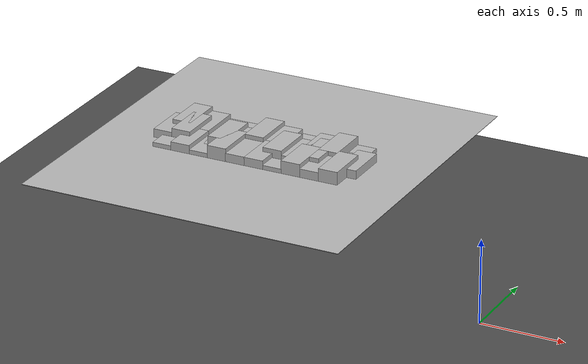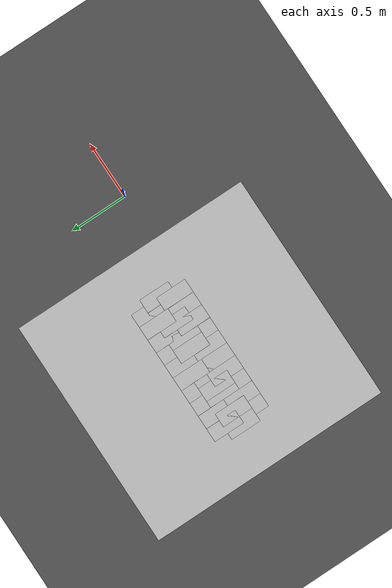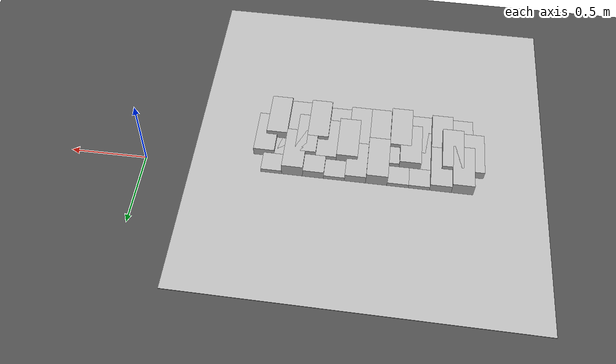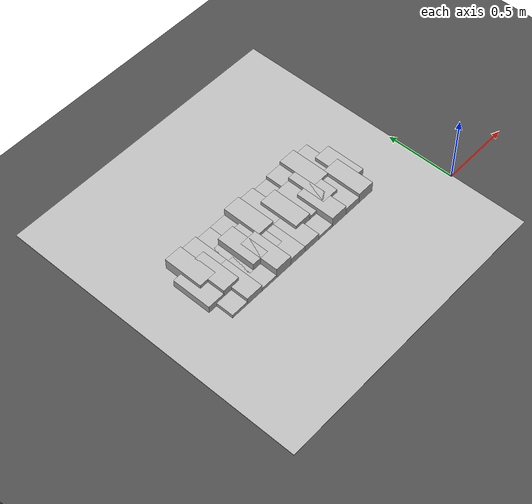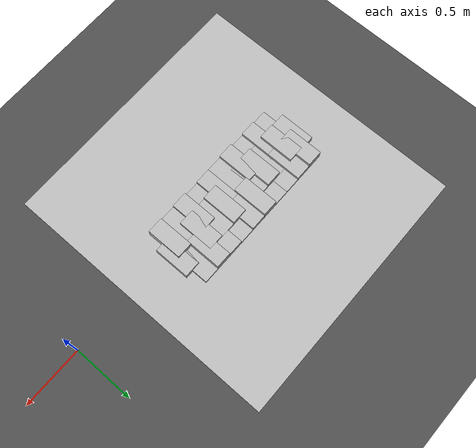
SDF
<sdf version="1.6">
 <world name="default">
  <model name="ground_plane">
   <static>1</static>
   <link name="link">
    <collision name="collision">
     <geometry><plane><normal>0 0 1</normal><size>100 100</size></plane></geometry>
     <surface><friction><ode><mu>100</mu><mu2>50</mu2></ode></friction></surface>
    </collision>
    <visual name="visual">
     <cast_shadows>0</cast_shadows>
     <geometry><plane><normal>0 0 1</normal><size>100 100</size></plane></geometry>
     <material>
      <script><uri>file://media/materials/scripts/gazebo.material</uri><name>Gazebo/Grey</name></script>
     </material>
    </visual>
   </link>
  </model>
  <model name="frc2016_roughterrain_0">
   <link name="link_clone_6">
    <pose>-1.32641 0.202085 -0.073164 0 -0 0</pose>
    <inertial>
     <inertia><ixx>nan</ixx><ixy>0</ixy><ixz>0</ixz><iyy>nan</iyy><iyz>0</iyz><izz>nan</izz></inertia>
     <mass>0</mass>
    </inertial>
    <visual name="row1_block3_md">
     <pose>0.28575 0.1143 0.10968 0 -0 0</pose>
     <geometry><box><size>0.115452 0.257474 0.0508</size></box></geometry>
     <material><shader type="pixel"/></material>
    </visual>
    <visual name="row1_block2_lg">
     <pose>0.40005 0.1143 0.12238 0 -0 0</pose>
     <geometry><box><size>0.115452 0.257474 0.0762</size></box></geometry>
     <material><shader type="pixel"/></material>
    </visual>
    <visual name="row1_block4_sm">
     <pose>0.17145 0.1143 0.09698 0 -0 0</pose>
     <geometry><box><size>0.115452 0.257474 0.0254</size></box></geometry>
     <material><shader type="pixel"/></material>
    </visual>
    <visual name="platform">
     <pose>0 0 0.08269 0 -0 0</pose>
     <geometry><box><size>1.91826 2.01688 0.003175</size></box></geometry>
     <material><shader type="pixel"/></material>
    </visual>
    <visual name="row1_block1_sm">
     <pose>0.51435 0.1143 0.09698 0 -0 0</pose>
     <geometry><box><size>0.115452 0.257474 0.0254</size></box></geometry>
     <material><shader type="pixel"/></material>
    </visual>
    <visual name="row1_block5_md">
     <pose>0.05715 0.1143 0.10968 0 -0 0</pose>
     <geometry><box><size>0.115452 0.257474 0.0508</size></box></geometry>
     <material><shader type="pixel"/></material>
    </visual>
    <visual name="row1_block6_lg">
     <pose>-0.05715 0.1143 0.12238 0 -0 0</pose>
     <geometry><box><size>0.115452 0.257474 0.0762</size></box></geometry>
     <material><shader type="pixel"/></material>
    </visual>
    <visual name="row1_block7_sm">
     <pose>-0.17145 0.1143 0.09698 0 -0 0</pose>
     <geometry><box><size>0.115452 0.257474 0.0254</size></box></geometry>
     <material><shader type="pixel"/></material>
    </visual>
    <visual name="row1_block8_sm">
     <pose>-0.28575 0.1143 0.09698 0 -0 0</pose>
     <geometry><box><size>0.115452 0.257474 0.0254</size></box></geometry>
     <material><shader type="pixel"/></material>
    </visual>
    <visual name="row1_block9_md">
     <pose>-0.40005 0.1143 0.10968 0 -0 0</pose>
     <geometry><box><size>0.115452 0.257474 0.0508</size></box></geometry>
     <material><shader type="pixel"/></material>
    </visual>
    <visual name="row1_block10_lg">
     <pose>-0.51435 0.1143 0.12238 0 -0 0</pose>
     <geometry><box><size>0.115452 0.257474 0.0762</size></box></geometry>
     <material><shader type="pixel"/></material>
    </visual>
    <visual name="row2_block1_md">
     <pose>0.5715 0 0.10968 0 -0 0</pose>
     <geometry><box><size>0.115452 0.257474 0.0508</size></box></geometry>
     <material><shader type="pixel"/></material>
    </visual>
    <visual name="row2_block2_sm">
     <pose>0.4572 0 0.09698 0 -0 0</pose>
     <geometry><box><size>0.115452 0.257474 0.0254</size></box></geometry>
     <material><shader type="pixel"/></material>
    </visual>
    <visual name="row2_block3_lg">
     <pose>0.3429 0 0.12238 0 -0 0</pose>
     <geometry><box><size>0.115452 0.257474 0.0762</size></box></geometry>
     <material><shader type="pixel"/></material>
    </visual>
    <visual name="row2_block4_md">
     <pose>0.2286 0 0.10968 0 -0 0</pose>
     <geometry><box><size>0.115452 0.257474 0.0508</size></box></geometry>
     <material><shader type="pixel"/></material>
    </visual>
    <visual name="row2_block5_lg">
     <pose>0.1143 0 0.12238 0 -0 0</pose>
     <geometry><box><size>0.115452 0.257474 0.0762</size></box></geometry>
     <material><shader type="pixel"/></material>
    </visual>
    <visual name="row2_block6_sm">
     <pose>0 0 0.09698 0 -0 0</pose>
     <geometry><box><size>0.115452 0.257474 0.0254</size></box></geometry>
     <material><shader type="pixel"/></material>
    </visual>
    <visual name="row2_block7_md">
     <pose>-0.1143 0 0.10968 0 -0 0</pose>
     <geometry><box><size>0.115452 0.257474 0.0508</size></box></geometry>
     <material><shader type="pixel"/></material>
    </visual>
    <visual name="row2_block8_lg">
     <pose>-0.2286 0 0.12238 0 -0 0</pose>
     <geometry><box><size>0.115452 0.257474 0.0762</size></box></geometry>
     <material><shader type="pixel"/></material>
    </visual>
    <visual name="row2_block9_sm">
     <pose>-0.3429 0 0.09698 0 -0 0</pose>
     <geometry><box><size>0.115452 0.257474 0.0254</size></box></geometry>
     <material><shader type="pixel"/></material>
    </visual>
    <visual name="row2_block10_lg">
     <pose>-0.4572 0 0.12238 0 -0 0</pose>
     <geometry><box><size>0.115452 0.257474 0.0762</size></box></geometry>
     <material><shader type="pixel"/></material>
    </visual>
    <visual name="row2_block11_md">
     <pose>-0.5715 0 0.10968 0 -0 0</pose>
     <geometry><box><size>0.115452 0.257474 0.0508</size></box></geometry>
     <material><shader type="pixel"/></material>
    </visual>
    <visual name="row3_block2_md">
     <pose>0.40005 -0.1143 0.10968 0 -0 0</pose>
     <geometry><box><size>0.115452 0.257474 0.0508</size></box></geometry>
     <material><shader type="pixel"/></material>
    </visual>
    <visual name="row3_block1_lg">
     <pose>0.51435 -0.1143 0.12238 0 -0 0</pose>
     <geometry><box><size>0.115452 0.257474 0.0762</size></box></geometry>
     <material><shader type="pixel"/></material>
    </visual>
    <visual name="row3_block3_lg">
     <pose>0.28575 -0.1143 0.12238 0 -0 0</pose>
     <geometry><box><size>0.115452 0.257474 0.0762</size></box></geometry>
     <material><shader type="pixel"/></material>
    </visual>
    <visual name="row3_block4_sm">
     <pose>0.17145 -0.1143 0.09698 0 -0 0</pose>
     <geometry><box><size>0.115452 0.257474 0.0254</size></box></geometry>
     <material><shader type="pixel"/></material>
    </visual>
    <visual name="row3_block5_md">
     <pose>0.05715 -0.1143 0.10968 0 -0 0</pose>
     <geometry><box><size>0.115452 0.257474 0.0508</size></box></geometry>
     <material><shader type="pixel"/></material>
    </visual>
    <visual name="row3_block6_md">
     <pose>-0.05715 -0.1143 0.10968 0 -0 0</pose>
     <geometry><box><size>0.115452 0.257474 0.0508</size></box></geometry>
     <material><shader type="pixel"/></material>
    </visual>
    <visual name="row3_block8_sm">
     <pose>-0.28575 -0.1143 0.09698 0 -0 0</pose>
     <geometry><box><size>0.115452 0.257474 0.0254</size></box></geometry>
     <material><shader type="pixel"/></material>
    </visual>
    <visual name="row3_block7_lg">
     <pose>-0.17145 -0.1143 0.12238 0 -0 0</pose>
     <geometry><box><size>0.115452 0.257474 0.0762</size></box></geometry>
     <material><shader type="pixel"/></material>
    </visual>
    <visual name="row3_block9_md">
     <pose>-0.40005 -0.1143 0.10968 0 -0 0</pose>
     <geometry><box><size>0.115452 0.257474 0.0508</size></box></geometry>
     <material><shader type="pixel"/></material>
    </visual>
    <visual name="row3_block10_sm">
     <pose>-0.51435 -0.1143 0.09698 0 -0 0</pose>
     <geometry><box><size>0.115452 0.257474 0.0254</size></box></geometry>
     <material><shader type="pixel"/></material>
    </visual>
    <collision name="row2_block5_lg_0">
     <pose>0.1143 0 0.12238 0 -0 0</pose>
     <geometry><box><size>0.115452 0.257474 0.0762</size></box></geometry>
     <surface>
      <friction>
       <ode><mu>1</mu><mu2>1</mu2><fdir1>0 0 0</fdir1><slip1>0</slip1><slip2>0</slip2></ode>
       <torsional>
        <coefficient>1</coefficient>
        <patch_radius>0</patch_radius>
        <surface_radius>0</surface_radius>
        <use_patch_radius>1</use_patch_radius>
        <ode><slip>0</slip></ode>
       </torsional>
      </friction>
      <bounce><restitution_coefficient>0</restitution_coefficient><threshold>1e+06</threshold></bounce>
      <contact>
       <collide_without_contact>0</collide_without_contact>
       <collide_without_contact_bitmask>1</collide_without_contact_bitmask>
       <collide_bitmask>1</collide_bitmask>
       <ode>
        <soft_cfm>0</soft_cfm>
        <soft_erp>0.2</soft_erp>
        <kp>1e+13</kp>
        <kd>1</kd>
        <max_vel>0.01</max_vel>
        <min_depth>0</min_depth>
       </ode>
       <bullet>
        <split_impulse>1</split_impulse>
        <split_impulse_penetration_threshold>-0.01</split_impulse_penetration_threshold>
        <soft_cfm>0</soft_cfm>
        <soft_erp>0.2</soft_erp>
        <kp>1e+13</kp>
        <kd>1</kd>
       </bullet>
      </contact>
     </surface>
    </collision>
    <collision name="platform_0">
     <pose>0 0 0.08269 0 -0 0</pose>
     <geometry><box><size>1.91826 2.01688 0.003175</size></box></geometry>
     <surface>
      <friction>
       <ode><mu>1</mu><mu2>1</mu2><fdir1>0 0 0</fdir1><slip1>0</slip1><slip2>0</slip2></ode>
       <torsional>
        <coefficient>1</coefficient>
        <patch_radius>0</patch_radius>
        <surface_radius>0</surface_radius>
        <use_patch_radius>1</use_patch_radius>
        <ode><slip>0</slip></ode>
       </torsional>
      </friction>
      <bounce><restitution_coefficient>0</restitution_coefficient><threshold>1e+06</threshold></bounce>
      <contact>
       <collide_without_contact>0</collide_without_contact>
       <collide_without_contact_bitmask>1</collide_without_contact_bitmask>
       <collide_bitmask>1</collide_bitmask>
       <ode>
        <soft_cfm>0</soft_cfm>
        <soft_erp>0.2</soft_erp>
        <kp>1e+13</kp>
        <kd>1</kd>
        <max_vel>0.01</max_vel>
        <min_depth>0</min_depth>
       </ode>
       <bullet>
        <split_impulse>1</split_impulse>
        <split_impulse_penetration_threshold>-0.01</split_impulse_penetration_threshold>
        <soft_cfm>0</soft_cfm>
        <soft_erp>0.2</soft_erp>
        <kp>1e+13</kp>
        <kd>1</kd>
       </bullet>
      </contact>
     </surface>
    </collision>
    <collision name="row1_block1_sm_0">
     <pose>0.51435 0.1143 0.09698 0 -0 0</pose>
     <geometry><box><size>0.115452 0.257474 0.0254</size></box></geometry>
     <surface>
      <friction>
       <ode><mu>1</mu><mu2>1</mu2><fdir1>0 0 0</fdir1><slip1>0</slip1><slip2>0</slip2></ode>
       <torsional>
        <coefficient>1</coefficient>
        <patch_radius>0</patch_radius>
        <surface_radius>0</surface_radius>
        <use_patch_radius>1</use_patch_radius>
        <ode><slip>0</slip></ode>
       </torsional>
      </friction>
      <bounce><restitution_coefficient>0</restitution_coefficient><threshold>1e+06</threshold></bounce>
      <contact>
       <collide_without_contact>0</collide_without_contact>
       <collide_without_contact_bitmask>1</collide_without_contact_bitmask>
       <collide_bitmask>1</collide_bitmask>
       <ode>
        <soft_cfm>0</soft_cfm>
        <soft_erp>0.2</soft_erp>
        <kp>1e+13</kp>
        <kd>1</kd>
        <max_vel>0.01</max_vel>
        <min_depth>0</min_depth>
       </ode>
       <bullet>
        <split_impulse>1</split_impulse>
        <split_impulse_penetration_threshold>-0.01</split_impulse_penetration_threshold>
        <soft_cfm>0</soft_cfm>
        <soft_erp>0.2</soft_erp>
        <kp>1e+13</kp>
        <kd>1</kd>
       </bullet>
      </contact>
     </surface>
    </collision>
    <collision name="row1_block3_md_0">
     <pose>0.28575 0.1143 0.10968 0 -0 0</pose>
     <geometry><box><size>0.115452 0.257474 0.0508</size></box></geometry>
     <surface>
      <friction>
       <ode><mu>1</mu><mu2>1</mu2><fdir1>0 0 0</fdir1><slip1>0</slip1><slip2>0</slip2></ode>
       <torsional>
        <coefficient>1</coefficient>
        <patch_radius>0</patch_radius>
        <surface_radius>0</surface_radius>
        <use_patch_radius>1</use_patch_radius>
        <ode><slip>0</slip></ode>
       </torsional>
      </friction>
      <bounce><restitution_coefficient>0</restitution_coefficient><threshold>1e+06</threshold></bounce>
      <contact>
       <collide_without_contact>0</collide_without_contact>
       <collide_without_contact_bitmask>1</collide_without_contact_bitmask>
       <collide_bitmask>1</collide_bitmask>
       <ode>
        <soft_cfm>0</soft_cfm>
        <soft_erp>0.2</soft_erp>
        <kp>1e+13</kp>
        <kd>1</kd>
        <max_vel>0.01</max_vel>
        <min_depth>0</min_depth>
       </ode>
       <bullet>
        <split_impulse>1</split_impulse>
        <split_impulse_penetration_threshold>-0.01</split_impulse_penetration_threshold>
        <soft_cfm>0</soft_cfm>
        <soft_erp>0.2</soft_erp>
        <kp>1e+13</kp>
        <kd>1</kd>
       </bullet>
      </contact>
     </surface>
    </collision>
    <collision name="row1_block2_lg_0">
     <pose>0.40005 0.1143 0.12238 0 -0 0</pose>
     <geometry><box><size>0.115452 0.257474 0.0762</size></box></geometry>
     <surface>
      <friction>
       <ode><mu>1</mu><mu2>1</mu2><fdir1>0 0 0</fdir1><slip1>0</slip1><slip2>0</slip2></ode>
       <torsional>
        <coefficient>1</coefficient>
        <patch_radius>0</patch_radius>
        <surface_radius>0</surface_radius>
        <use_patch_radius>1</use_patch_radius>
        <ode><slip>0</slip></ode>
       </torsional>
      </friction>
      <bounce><restitution_coefficient>0</restitution_coefficient><threshold>1e+06</threshold></bounce>
      <contact>
       <collide_without_contact>0</collide_without_contact>
       <collide_without_contact_bitmask>1</collide_without_contact_bitmask>
       <collide_bitmask>1</collide_bitmask>
       <ode>
        <soft_cfm>0</soft_cfm>
        <soft_erp>0.2</soft_erp>
        <kp>1e+13</kp>
        <kd>1</kd>
        <max_vel>0.01</max_vel>
        <min_depth>0</min_depth>
       </ode>
       <bullet>
        <split_impulse>1</split_impulse>
        <split_impulse_penetration_threshold>-0.01</split_impulse_penetration_threshold>
        <soft_cfm>0</soft_cfm>
        <soft_erp>0.2</soft_erp>
        <kp>1e+13</kp>
        <kd>1</kd>
       </bullet>
      </contact>
     </surface>
    </collision>
    <collision name="row1_block6_lg_0">
     <pose>-0.05715 0.1143 0.12238 0 -0 0</pose>
     <geometry><box><size>0.115452 0.257474 0.0762</size></box></geometry>
     <surface>
      <friction>
       <ode><mu>1</mu><mu2>1</mu2><fdir1>0 0 0</fdir1><slip1>0</slip1><slip2>0</slip2></ode>
       <torsional>
        <coefficient>1</coefficient>
        <patch_radius>0</patch_radius>
        <surface_radius>0</surface_radius>
        <use_patch_radius>1</use_patch_radius>
        <ode><slip>0</slip></ode>
       </torsional>
      </friction>
      <bounce><restitution_coefficient>0</restitution_coefficient><threshold>1e+06</threshold></bounce>
      <contact>
       <collide_without_contact>0</collide_without_contact>
       <collide_without_contact_bitmask>1</collide_without_contact_bitmask>
       <collide_bitmask>1</collide_bitmask>
       <ode>
        <soft_cfm>0</soft_cfm>
        <soft_erp>0.2</soft_erp>
        <kp>1e+13</kp>
        <kd>1</kd>
        <max_vel>0.01</max_vel>
        <min_depth>0</min_depth>
       </ode>
       <bullet>
        <split_impulse>1</split_impulse>
        <split_impulse_penetration_threshold>-0.01</split_impulse_penetration_threshold>
        <soft_cfm>0</soft_cfm>
        <soft_erp>0.2</soft_erp>
        <kp>1e+13</kp>
        <kd>1</kd>
       </bullet>
      </contact>
     </surface>
    </collision>
    <collision name="row1_block5_md_0">
     <pose>0.05715 0.1143 0.10968 0 -0 0</pose>
     <geometry><box><size>0.115452 0.257474 0.0508</size></box></geometry>
     <surface>
      <friction>
       <ode><mu>1</mu><mu2>1</mu2><fdir1>0 0 0</fdir1><slip1>0</slip1><slip2>0</slip2></ode>
       <torsional>
        <coefficient>1</coefficient>
        <patch_radius>0</patch_radius>
        <surface_radius>0</surface_radius>
        <use_patch_radius>1</use_patch_radius>
        <ode><slip>0</slip></ode>
       </torsional>
      </friction>
      <bounce><restitution_coefficient>0</restitution_coefficient><threshold>1e+06</threshold></bounce>
      <contact>
       <collide_without_contact>0</collide_without_contact>
       <collide_without_contact_bitmask>1</collide_without_contact_bitmask>
       <collide_bitmask>1</collide_bitmask>
       <ode>
        <soft_cfm>0</soft_cfm>
        <soft_erp>0.2</soft_erp>
        <kp>1e+13</kp>
        <kd>1</kd>
        <max_vel>0.01</max_vel>
        <min_depth>0</min_depth>
       </ode>
       <bullet>
        <split_impulse>1</split_impulse>
        <split_impulse_penetration_threshold>-0.01</split_impulse_penetration_threshold>
        <soft_cfm>0</soft_cfm>
        <soft_erp>0.2</soft_erp>
        <kp>1e+13</kp>
        <kd>1</kd>
       </bullet>
      </contact>
     </surface>
    </collision>
    <collision name="row1_block4_sm_0">
     <pose>0.17145 0.1143 0.09698 0 -0 0</pose>
     <geometry><box><size>0.115452 0.257474 0.0254</size></box></geometry>
     <surface>
      <friction>
       <ode><mu>1</mu><mu2>1</mu2><fdir1>0 0 0</fdir1><slip1>0</slip1><slip2>0</slip2></ode>
       <torsional>
        <coefficient>1</coefficient>
        <patch_radius>0</patch_radius>
        <surface_radius>0</surface_radius>
        <use_patch_radius>1</use_patch_radius>
        <ode><slip>0</slip></ode>
       </torsional>
      </friction>
      <bounce><restitution_coefficient>0</restitution_coefficient><threshold>1e+06</threshold></bounce>
      <contact>
       <collide_without_contact>0</collide_without_contact>
       <collide_without_contact_bitmask>1</collide_without_contact_bitmask>
       <collide_bitmask>1</collide_bitmask>
       <ode>
        <soft_cfm>0</soft_cfm>
        <soft_erp>0.2</soft_erp>
        <kp>1e+13</kp>
        <kd>1</kd>
        <max_vel>0.01</max_vel>
        <min_depth>0</min_depth>
       </ode>
       <bullet>
        <split_impulse>1</split_impulse>
        <split_impulse_penetration_threshold>-0.01</split_impulse_penetration_threshold>
        <soft_cfm>0</soft_cfm>
        <soft_erp>0.2</soft_erp>
        <kp>1e+13</kp>
        <kd>1</kd>
       </bullet>
      </contact>
     </surface>
    </collision>
    <collision name="row1_block7_sm_0">
     <pose>-0.17145 0.1143 0.09698 0 -0 0</pose>
     <geometry><box><size>0.115452 0.257474 0.0254</size></box></geometry>
     <surface>
      <friction>
       <ode><mu>1</mu><mu2>1</mu2><fdir1>0 0 0</fdir1><slip1>0</slip1><slip2>0</slip2></ode>
       <torsional>
        <coefficient>1</coefficient>
        <patch_radius>0</patch_radius>
        <surface_radius>0</surface_radius>
        <use_patch_radius>1</use_patch_radius>
        <ode><slip>0</slip></ode>
       </torsional>
      </friction>
      <bounce><restitution_coefficient>0</restitution_coefficient><threshold>1e+06</threshold></bounce>
      <contact>
       <collide_without_contact>0</collide_without_contact>
       <collide_without_contact_bitmask>1</collide_without_contact_bitmask>
       <collide_bitmask>1</collide_bitmask>
       <ode>
        <soft_cfm>0</soft_cfm>
        <soft_erp>0.2</soft_erp>
        <kp>1e+13</kp>
        <kd>1</kd>
        <max_vel>0.01</max_vel>
        <min_depth>0</min_depth>
       </ode>
       <bullet>
        <split_impulse>1</split_impulse>
        <split_impulse_penetration_threshold>-0.01</split_impulse_penetration_threshold>
        <soft_cfm>0</soft_cfm>
        <soft_erp>0.2</soft_erp>
        <kp>1e+13</kp>
        <kd>1</kd>
       </bullet>
      </contact>
     </surface>
    </collision>
    <collision name="row1_block10_lg_0">
     <pose>-0.51435 0.1143 0.12238 0 -0 0</pose>
     <geometry><box><size>0.115452 0.257474 0.0762</size></box></geometry>
     <surface>
      <friction>
       <ode><mu>1</mu><mu2>1</mu2><fdir1>0 0 0</fdir1><slip1>0</slip1><slip2>0</slip2></ode>
       <torsional>
        <coefficient>1</coefficient>
        <patch_radius>0</patch_radius>
        <surface_radius>0</surface_radius>
        <use_patch_radius>1</use_patch_radius>
        <ode><slip>0</slip></ode>
       </torsional>
      </friction>
      <bounce><restitution_coefficient>0</restitution_coefficient><threshold>1e+06</threshold></bounce>
      <contact>
       <collide_without_contact>0</collide_without_contact>
       <collide_without_contact_bitmask>1</collide_without_contact_bitmask>
       <collide_bitmask>1</collide_bitmask>
       <ode>
        <soft_cfm>0</soft_cfm>
        <soft_erp>0.2</soft_erp>
        <kp>1e+13</kp>
        <kd>1</kd>
        <max_vel>0.01</max_vel>
        <min_depth>0</min_depth>
       </ode>
       <bullet>
        <split_impulse>1</split_impulse>
        <split_impulse_penetration_threshold>-0.01</split_impulse_penetration_threshold>
        <soft_cfm>0</soft_cfm>
        <soft_erp>0.2</soft_erp>
        <kp>1e+13</kp>
        <kd>1</kd>
       </bullet>
      </contact>
     </surface>
    </collision>
    <collision name="row1_block8_sm_0">
     <pose>-0.28575 0.1143 0.09698 0 -0 0</pose>
     <geometry><box><size>0.115452 0.257474 0.0254</size></box></geometry>
     <surface>
      <friction>
       <ode><mu>1</mu><mu2>1</mu2><fdir1>0 0 0</fdir1><slip1>0</slip1><slip2>0</slip2></ode>
       <torsional>
        <coefficient>1</coefficient>
        <patch_radius>0</patch_radius>
        <surface_radius>0</surface_radius>
        <use_patch_radius>1</use_patch_radius>
        <ode><slip>0</slip></ode>
       </torsional>
      </friction>
      <bounce><restitution_coefficient>0</restitution_coefficient><threshold>1e+06</threshold></bounce>
      <contact>
       <collide_without_contact>0</collide_without_contact>
       <collide_without_contact_bitmask>1</collide_without_contact_bitmask>
       <collide_bitmask>1</collide_bitmask>
       <ode>
        <soft_cfm>0</soft_cfm>
        <soft_erp>0.2</soft_erp>
        <kp>1e+13</kp>
        <kd>1</kd>
        <max_vel>0.01</max_vel>
        <min_depth>0</min_depth>
       </ode>
       <bullet>
        <split_impulse>1</split_impulse>
        <split_impulse_penetration_threshold>-0.01</split_impulse_penetration_threshold>
        <soft_cfm>0</soft_cfm>
        <soft_erp>0.2</soft_erp>
        <kp>1e+13</kp>
        <kd>1</kd>
       </bullet>
      </contact>
     </surface>
    </collision>
    <collision name="row1_block9_md_0">
     <pose>-0.40005 0.1143 0.10968 0 -0 0</pose>
     <geometry><box><size>0.115452 0.257474 0.0508</size></box></geometry>
     <surface>
      <friction>
       <ode><mu>1</mu><mu2>1</mu2><fdir1>0 0 0</fdir1><slip1>0</slip1><slip2>0</slip2></ode>
       <torsional>
        <coefficient>1</coefficient>
        <patch_radius>0</patch_radius>
        <surface_radius>0</surface_radius>
        <use_patch_radius>1</use_patch_radius>
        <ode><slip>0</slip></ode>
       </torsional>
      </friction>
      <bounce><restitution_coefficient>0</restitution_coefficient><threshold>1e+06</threshold></bounce>
      <contact>
       <collide_without_contact>0</collide_without_contact>
       <collide_without_contact_bitmask>1</collide_without_contact_bitmask>
       <collide_bitmask>1</collide_bitmask>
       <ode>
        <soft_cfm>0</soft_cfm>
        <soft_erp>0.2</soft_erp>
        <kp>1e+13</kp>
        <kd>1</kd>
        <max_vel>0.01</max_vel>
        <min_depth>0</min_depth>
       </ode>
       <bullet>
        <split_impulse>1</split_impulse>
        <split_impulse_penetration_threshold>-0.01</split_impulse_penetration_threshold>
        <soft_cfm>0</soft_cfm>
        <soft_erp>0.2</soft_erp>
        <kp>1e+13</kp>
        <kd>1</kd>
       </bullet>
      </contact>
     </surface>
    </collision>
    <collision name="row2_block1_md_0">
     <pose>0.5715 0 0.10968 0 -0 0</pose>
     <geometry><box><size>0.115452 0.257474 0.0508</size></box></geometry>
     <surface>
      <friction>
       <ode><mu>1</mu><mu2>1</mu2><fdir1>0 0 0</fdir1><slip1>0</slip1><slip2>0</slip2></ode>
       <torsional>
        <coefficient>1</coefficient>
        <patch_radius>0</patch_radius>
        <surface_radius>0</surface_radius>
        <use_patch_radius>1</use_patch_radius>
        <ode><slip>0</slip></ode>
       </torsional>
      </friction>
      <bounce><restitution_coefficient>0</restitution_coefficient><threshold>1e+06</threshold></bounce>
      <contact>
       <collide_without_contact>0</collide_without_contact>
       <collide_without_contact_bitmask>1</collide_without_contact_bitmask>
       <collide_bitmask>1</collide_bitmask>
       <ode>
        <soft_cfm>0</soft_cfm>
        <soft_erp>0.2</soft_erp>
        <kp>1e+13</kp>
        <kd>1</kd>
        <max_vel>0.01</max_vel>
        <min_depth>0</min_depth>
       </ode>
       <bullet>
        <split_impulse>1</split_impulse>
        <split_impulse_penetration_threshold>-0.01</split_impulse_penetration_threshold>
        <soft_cfm>0</soft_cfm>
        <soft_erp>0.2</soft_erp>
        <kp>1e+13</kp>
        <kd>1</kd>
       </bullet>
      </contact>
     </surface>
    </collision>
    <collision name="row2_block4_md_0">
     <pose>0.2286 0 0.10968 0 -0 0</pose>
     <geometry><box><size>0.115452 0.257474 0.0508</size></box></geometry>
     <surface>
      <friction>
       <ode><mu>1</mu><mu2>1</mu2><fdir1>0 0 0</fdir1><slip1>0</slip1><slip2>0</slip2></ode>
       <torsional>
        <coefficient>1</coefficient>
        <patch_radius>0</patch_radius>
        <surface_radius>0</surface_radius>
        <use_patch_radius>1</use_patch_radius>
        <ode><slip>0</slip></ode>
       </torsional>
      </friction>
      <bounce><restitution_coefficient>0</restitution_coefficient><threshold>1e+06</threshold></bounce>
      <contact>
       <collide_without_contact>0</collide_without_contact>
       <collide_without_contact_bitmask>1</collide_without_contact_bitmask>
       <collide_bitmask>1</collide_bitmask>
       <ode>
        <soft_cfm>0</soft_cfm>
        <soft_erp>0.2</soft_erp>
        <kp>1e+13</kp>
        <kd>1</kd>
        <max_vel>0.01</max_vel>
        <min_depth>0</min_depth>
       </ode>
       <bullet>
        <split_impulse>1</split_impulse>
        <split_impulse_penetration_threshold>-0.01</split_impulse_penetration_threshold>
        <soft_cfm>0</soft_cfm>
        <soft_erp>0.2</soft_erp>
        <kp>1e+13</kp>
        <kd>1</kd>
       </bullet>
      </contact>
     </surface>
    </collision>
    <collision name="row2_block2_sm_0">
     <pose>0.4572 0 0.09698 0 -0 0</pose>
     <geometry><box><size>0.115452 0.257474 0.0254</size></box></geometry>
     <surface>
      <friction>
       <ode><mu>1</mu><mu2>1</mu2><fdir1>0 0 0</fdir1><slip1>0</slip1><slip2>0</slip2></ode>
       <torsional>
        <coefficient>1</coefficient>
        <patch_radius>0</patch_radius>
        <surface_radius>0</surface_radius>
        <use_patch_radius>1</use_patch_radius>
        <ode><slip>0</slip></ode>
       </torsional>
      </friction>
      <bounce><restitution_coefficient>0</restitution_coefficient><threshold>1e+06</threshold></bounce>
      <contact>
       <collide_without_contact>0</collide_without_contact>
       <collide_without_contact_bitmask>1</collide_without_contact_bitmask>
       <collide_bitmask>1</collide_bitmask>
       <ode>
        <soft_cfm>0</soft_cfm>
        <soft_erp>0.2</soft_erp>
        <kp>1e+13</kp>
        <kd>1</kd>
        <max_vel>0.01</max_vel>
        <min_depth>0</min_depth>
       </ode>
       <bullet>
        <split_impulse>1</split_impulse>
        <split_impulse_penetration_threshold>-0.01</split_impulse_penetration_threshold>
        <soft_cfm>0</soft_cfm>
        <soft_erp>0.2</soft_erp>
        <kp>1e+13</kp>
        <kd>1</kd>
       </bullet>
      </contact>
     </surface>
    </collision>
    <collision name="row2_block3_lg_0">
     <pose>0.3429 0 0.12238 0 -0 0</pose>
     <geometry><box><size>0.115452 0.257474 0.0762</size></box></geometry>
     <surface>
      <friction>
       <ode><mu>1</mu><mu2>1</mu2><fdir1>0 0 0</fdir1><slip1>0</slip1><slip2>0</slip2></ode>
       <torsional>
        <coefficient>1</coefficient>
        <patch_radius>0</patch_radius>
        <surface_radius>0</surface_radius>
        <use_patch_radius>1</use_patch_radius>
        <ode><slip>0</slip></ode>
       </torsional>
      </friction>
      <bounce><restitution_coefficient>0</restitution_coefficient><threshold>1e+06</threshold></bounce>
      <contact>
       <collide_without_contact>0</collide_without_contact>
       <collide_without_contact_bitmask>1</collide_without_contact_bitmask>
       <collide_bitmask>1</collide_bitmask>
       <ode>
        <soft_cfm>0</soft_cfm>
        <soft_erp>0.2</soft_erp>
        <kp>1e+13</kp>
        <kd>1</kd>
        <max_vel>0.01</max_vel>
        <min_depth>0</min_depth>
       </ode>
       <bullet>
        <split_impulse>1</split_impulse>
        <split_impulse_penetration_threshold>-0.01</split_impulse_penetration_threshold>
        <soft_cfm>0</soft_cfm>
        <soft_erp>0.2</soft_erp>
        <kp>1e+13</kp>
        <kd>1</kd>
       </bullet>
      </contact>
     </surface>
    </collision>
    <collision name="row2_block10_lg_0">
     <pose>-0.4572 0 0.12238 0 -0 0</pose>
     <geometry><box><size>0.115452 0.257474 0.0762</size></box></geometry>
     <surface>
      <friction>
       <ode><mu>1</mu><mu2>1</mu2><fdir1>0 0 0</fdir1><slip1>0</slip1><slip2>0</slip2></ode>
       <torsional>
        <coefficient>1</coefficient>
        <patch_radius>0</patch_radius>
        <surface_radius>0</surface_radius>
        <use_patch_radius>1</use_patch_radius>
        <ode><slip>0</slip></ode>
       </torsional>
      </friction>
      <bounce><restitution_coefficient>0</restitution_coefficient><threshold>1e+06</threshold></bounce>
      <contact>
       <collide_without_contact>0</collide_without_contact>
       <collide_without_contact_bitmask>1</collide_without_contact_bitmask>
       <collide_bitmask>1</collide_bitmask>
       <ode>
        <soft_cfm>0</soft_cfm>
        <soft_erp>0.2</soft_erp>
        <kp>1e+13</kp>
        <kd>1</kd>
        <max_vel>0.01</max_vel>
        <min_depth>0</min_depth>
       </ode>
       <bullet>
        <split_impulse>1</split_impulse>
        <split_impulse_penetration_threshold>-0.01</split_impulse_penetration_threshold>
        <soft_cfm>0</soft_cfm>
        <soft_erp>0.2</soft_erp>
        <kp>1e+13</kp>
        <kd>1</kd>
       </bullet>
      </contact>
     </surface>
    </collision>
    <collision name="row2_block6_sm_0">
     <pose>0 0 0.09698 0 -0 0</pose>
     <geometry><box><size>0.115452 0.257474 0.0254</size></box></geometry>
     <surface>
      <friction>
       <ode><mu>1</mu><mu2>1</mu2><fdir1>0 0 0</fdir1><slip1>0</slip1><slip2>0</slip2></ode>
       <torsional>
        <coefficient>1</coefficient>
        <patch_radius>0</patch_radius>
        <surface_radius>0</surface_radius>
        <use_patch_radius>1</use_patch_radius>
        <ode><slip>0</slip></ode>
       </torsional>
      </friction>
      <bounce><restitution_coefficient>0</restitution_coefficient><threshold>1e+06</threshold></bounce>
      <contact>
       <collide_without_contact>0</collide_without_contact>
       <collide_without_contact_bitmask>1</collide_without_contact_bitmask>
       <collide_bitmask>1</collide_bitmask>
       <ode>
        <soft_cfm>0</soft_cfm>
        <soft_erp>0.2</soft_erp>
        <kp>1e+13</kp>
        <kd>1</kd>
        <max_vel>0.01</max_vel>
        <min_depth>0</min_depth>
       </ode>
       <bullet>
        <split_impulse>1</split_impulse>
        <split_impulse_penetration_threshold>-0.01</split_impulse_penetration_threshold>
        <soft_cfm>0</soft_cfm>
        <soft_erp>0.2</soft_erp>
        <kp>1e+13</kp>
        <kd>1</kd>
       </bullet>
      </contact>
     </surface>
    </collision>
    <collision name="row2_block7_md_0">
     <pose>-0.1143 0 0.10968 0 -0 0</pose>
     <geometry><box><size>0.115452 0.257474 0.0508</size></box></geometry>
     <surface>
      <friction>
       <ode><mu>1</mu><mu2>1</mu2><fdir1>0 0 0</fdir1><slip1>0</slip1><slip2>0</slip2></ode>
       <torsional>
        <coefficient>1</coefficient>
        <patch_radius>0</patch_radius>
        <surface_radius>0</surface_radius>
        <use_patch_radius>1</use_patch_radius>
        <ode><slip>0</slip></ode>
       </torsional>
      </friction>
      <bounce><restitution_coefficient>0</restitution_coefficient><threshold>1e+06</threshold></bounce>
      <contact>
       <collide_without_contact>0</collide_without_contact>
       <collide_without_contact_bitmask>1</collide_without_contact_bitmask>
       <collide_bitmask>1</collide_bitmask>
       <ode>
        <soft_cfm>0</soft_cfm>
        <soft_erp>0.2</soft_erp>
        <kp>1e+13</kp>
        <kd>1</kd>
        <max_vel>0.01</max_vel>
        <min_depth>0</min_depth>
       </ode>
       <bullet>
        <split_impulse>1</split_impulse>
        <split_impulse_penetration_threshold>-0.01</split_impulse_penetration_threshold>
        <soft_cfm>0</soft_cfm>
        <soft_erp>0.2</soft_erp>
        <kp>1e+13</kp>
        <kd>1</kd>
       </bullet>
      </contact>
     </surface>
    </collision>
    <collision name="row2_block8_lg_0">
     <pose>-0.2286 0 0.12238 0 -0 0</pose>
     <geometry><box><size>0.115452 0.257474 0.0762</size></box></geometry>
     <surface>
      <friction>
       <ode><mu>1</mu><mu2>1</mu2><fdir1>0 0 0</fdir1><slip1>0</slip1><slip2>0</slip2></ode>
       <torsional>
        <coefficient>1</coefficient>
        <patch_radius>0</patch_radius>
        <surface_radius>0</surface_radius>
        <use_patch_radius>1</use_patch_radius>
        <ode><slip>0</slip></ode>
       </torsional>
      </friction>
      <bounce><restitution_coefficient>0</restitution_coefficient><threshold>1e+06</threshold></bounce>
      <contact>
       <collide_without_contact>0</collide_without_contact>
       <collide_without_contact_bitmask>1</collide_without_contact_bitmask>
       <collide_bitmask>1</collide_bitmask>
       <ode>
        <soft_cfm>0</soft_cfm>
        <soft_erp>0.2</soft_erp>
        <kp>1e+13</kp>
        <kd>1</kd>
        <max_vel>0.01</max_vel>
        <min_depth>0</min_depth>
       </ode>
       <bullet>
        <split_impulse>1</split_impulse>
        <split_impulse_penetration_threshold>-0.01</split_impulse_penetration_threshold>
        <soft_cfm>0</soft_cfm>
        <soft_erp>0.2</soft_erp>
        <kp>1e+13</kp>
        <kd>1</kd>
       </bullet>
      </contact>
     </surface>
    </collision>
    <collision name="row2_block9_sm_0">
     <pose>-0.3429 0 0.09698 0 -0 0</pose>
     <geometry><box><size>0.115452 0.257474 0.0254</size></box></geometry>
     <surface>
      <friction>
       <ode><mu>1</mu><mu2>1</mu2><fdir1>0 0 0</fdir1><slip1>0</slip1><slip2>0</slip2></ode>
       <torsional>
        <coefficient>1</coefficient>
        <patch_radius>0</patch_radius>
        <surface_radius>0</surface_radius>
        <use_patch_radius>1</use_patch_radius>
        <ode><slip>0</slip></ode>
       </torsional>
      </friction>
      <bounce><restitution_coefficient>0</restitution_coefficient><threshold>1e+06</threshold></bounce>
      <contact>
       <collide_without_contact>0</collide_without_contact>
       <collide_without_contact_bitmask>1</collide_without_contact_bitmask>
       <collide_bitmask>1</collide_bitmask>
       <ode>
        <soft_cfm>0</soft_cfm>
        <soft_erp>0.2</soft_erp>
        <kp>1e+13</kp>
        <kd>1</kd>
        <max_vel>0.01</max_vel>
        <min_depth>0</min_depth>
       </ode>
       <bullet>
        <split_impulse>1</split_impulse>
        <split_impulse_penetration_threshold>-0.01</split_impulse_penetration_threshold>
        <soft_cfm>0</soft_cfm>
        <soft_erp>0.2</soft_erp>
        <kp>1e+13</kp>
        <kd>1</kd>
       </bullet>
      </contact>
     </surface>
    </collision>
    <collision name="row3_block2_md_0">
     <pose>0.40005 -0.1143 0.10968 0 -0 0</pose>
     <geometry><box><size>0.115452 0.257474 0.0508</size></box></geometry>
     <surface>
      <friction>
       <ode><mu>1</mu><mu2>1</mu2><fdir1>0 0 0</fdir1><slip1>0</slip1><slip2>0</slip2></ode>
       <torsional>
        <coefficient>1</coefficient>
        <patch_radius>0</patch_radius>
        <surface_radius>0</surface_radius>
        <use_patch_radius>1</use_patch_radius>
        <ode><slip>0</slip></ode>
       </torsional>
      </friction>
      <bounce><restitution_coefficient>0</restitution_coefficient><threshold>1e+06</threshold></bounce>
      <contact>
       <collide_without_contact>0</collide_without_contact>
       <collide_without_contact_bitmask>1</collide_without_contact_bitmask>
       <collide_bitmask>1</collide_bitmask>
       <ode>
        <soft_cfm>0</soft_cfm>
        <soft_erp>0.2</soft_erp>
        <kp>1e+13</kp>
        <kd>1</kd>
        <max_vel>0.01</max_vel>
        <min_depth>0</min_depth>
       </ode>
       <bullet>
        <split_impulse>1</split_impulse>
        <split_impulse_penetration_threshold>-0.01</split_impulse_penetration_threshold>
        <soft_cfm>0</soft_cfm>
        <soft_erp>0.2</soft_erp>
        <kp>1e+13</kp>
        <kd>1</kd>
       </bullet>
      </contact>
     </surface>
    </collision>
    <collision name="row2_block11_md_0">
     <pose>-0.5715 0 0.10968 0 -0 0</pose>
     <geometry><box><size>0.115452 0.257474 0.0508</size></box></geometry>
     <surface>
      <friction>
       <ode><mu>1</mu><mu2>1</mu2><fdir1>0 0 0</fdir1><slip1>0</slip1><slip2>0</slip2></ode>
       <torsional>
        <coefficient>1</coefficient>
        <patch_radius>0</patch_radius>
        <surface_radius>0</surface_radius>
        <use_patch_radius>1</use_patch_radius>
        <ode><slip>0</slip></ode>
       </torsional>
      </friction>
      <bounce><restitution_coefficient>0</restitution_coefficient><threshold>1e+06</threshold></bounce>
      <contact>
       <collide_without_contact>0</collide_without_contact>
       <collide_without_contact_bitmask>1</collide_without_contact_bitmask>
       <collide_bitmask>1</collide_bitmask>
       <ode>
        <soft_cfm>0</soft_cfm>
        <soft_erp>0.2</soft_erp>
        <kp>1e+13</kp>
        <kd>1</kd>
        <max_vel>0.01</max_vel>
        <min_depth>0</min_depth>
       </ode>
       <bullet>
        <split_impulse>1</split_impulse>
        <split_impulse_penetration_threshold>-0.01</split_impulse_penetration_threshold>
        <soft_cfm>0</soft_cfm>
        <soft_erp>0.2</soft_erp>
        <kp>1e+13</kp>
        <kd>1</kd>
       </bullet>
      </contact>
     </surface>
    </collision>
    <collision name="row3_block1_lg_0">
     <pose>0.51435 -0.1143 0.12238 0 -0 0</pose>
     <geometry><box><size>0.115452 0.257474 0.0762</size></box></geometry>
     <surface>
      <friction>
       <ode><mu>1</mu><mu2>1</mu2><fdir1>0 0 0</fdir1><slip1>0</slip1><slip2>0</slip2></ode>
       <torsional>
        <coefficient>1</coefficient>
        <patch_radius>0</patch_radius>
        <surface_radius>0</surface_radius>
        <use_patch_radius>1</use_patch_radius>
        <ode><slip>0</slip></ode>
       </torsional>
      </friction>
      <bounce><restitution_coefficient>0</restitution_coefficient><threshold>1e+06</threshold></bounce>
      <contact>
       <collide_without_contact>0</collide_without_contact>
       <collide_without_contact_bitmask>1</collide_without_contact_bitmask>
       <collide_bitmask>1</collide_bitmask>
       <ode>
        <soft_cfm>0</soft_cfm>
        <soft_erp>0.2</soft_erp>
        <kp>1e+13</kp>
        <kd>1</kd>
        <max_vel>0.01</max_vel>
        <min_depth>0</min_depth>
       </ode>
       <bullet>
        <split_impulse>1</split_impulse>
        <split_impulse_penetration_threshold>-0.01</split_impulse_penetration_threshold>
        <soft_cfm>0</soft_cfm>
        <soft_erp>0.2</soft_erp>
        <kp>1e+13</kp>
        <kd>1</kd>
       </bullet>
      </contact>
     </surface>
    </collision>
    <collision name="row3_block3_lg_0">
     <pose>0.28575 -0.1143 0.12238 0 -0 0</pose>
     <geometry><box><size>0.115452 0.257474 0.0762</size></box></geometry>
     <surface>
      <friction>
       <ode><mu>1</mu><mu2>1</mu2><fdir1>0 0 0</fdir1><slip1>0</slip1><slip2>0</slip2></ode>
       <torsional>
        <coefficient>1</coefficient>
        <patch_radius>0</patch_radius>
        <surface_radius>0</surface_radius>
        <use_patch_radius>1</use_patch_radius>
        <ode><slip>0</slip></ode>
       </torsional>
      </friction>
      <bounce><restitution_coefficient>0</restitution_coefficient><threshold>1e+06</threshold></bounce>
      <contact>
       <collide_without_contact>0</collide_without_contact>
       <collide_without_contact_bitmask>1</collide_without_contact_bitmask>
       <collide_bitmask>1</collide_bitmask>
       <ode>
        <soft_cfm>0</soft_cfm>
        <soft_erp>0.2</soft_erp>
        <kp>1e+13</kp>
        <kd>1</kd>
        <max_vel>0.01</max_vel>
        <min_depth>0</min_depth>
       </ode>
       <bullet>
        <split_impulse>1</split_impulse>
        <split_impulse_penetration_threshold>-0.01</split_impulse_penetration_threshold>
        <soft_cfm>0</soft_cfm>
        <soft_erp>0.2</soft_erp>
        <kp>1e+13</kp>
        <kd>1</kd>
       </bullet>
      </contact>
     </surface>
    </collision>
    <collision name="row3_block4_sm_0">
     <pose>0.17145 -0.1143 0.09698 0 -0 0</pose>
     <geometry><box><size>0.115452 0.257474 0.0254</size></box></geometry>
     <surface>
      <friction>
       <ode><mu>1</mu><mu2>1</mu2><fdir1>0 0 0</fdir1><slip1>0</slip1><slip2>0</slip2></ode>
       <torsional>
        <coefficient>1</coefficient>
        <patch_radius>0</patch_radius>
        <surface_radius>0</surface_radius>
        <use_patch_radius>1</use_patch_radius>
        <ode><slip>0</slip></ode>
       </torsional>
      </friction>
      <bounce><restitution_coefficient>0</restitution_coefficient><threshold>1e+06</threshold></bounce>
      <contact>
       <collide_without_contact>0</collide_without_contact>
       <collide_without_contact_bitmask>1</collide_without_contact_bitmask>
       <collide_bitmask>1</collide_bitmask>
       <ode>
        <soft_cfm>0</soft_cfm>
        <soft_erp>0.2</soft_erp>
        <kp>1e+13</kp>
        <kd>1</kd>
        <max_vel>0.01</max_vel>
        <min_depth>0</min_depth>
       </ode>
       <bullet>
        <split_impulse>1</split_impulse>
        <split_impulse_penetration_threshold>-0.01</split_impulse_penetration_threshold>
        <soft_cfm>0</soft_cfm>
        <soft_erp>0.2</soft_erp>
        <kp>1e+13</kp>
        <kd>1</kd>
       </bullet>
      </contact>
     </surface>
    </collision>
    <collision name="row3_block5_md_0">
     <pose>0.05715 -0.1143 0.10968 0 -0 0</pose>
     <geometry><box><size>0.115452 0.257474 0.0508</size></box></geometry>
     <surface>
      <friction>
       <ode><mu>1</mu><mu2>1</mu2><fdir1>0 0 0</fdir1><slip1>0</slip1><slip2>0</slip2></ode>
       <torsional>
        <coefficient>1</coefficient>
        <patch_radius>0</patch_radius>
        <surface_radius>0</surface_radius>
        <use_patch_radius>1</use_patch_radius>
        <ode><slip>0</slip></ode>
       </torsional>
      </friction>
      <bounce><restitution_coefficient>0</restitution_coefficient><threshold>1e+06</threshold></bounce>
      <contact>
       <collide_without_contact>0</collide_without_contact>
       <collide_without_contact_bitmask>1</collide_without_contact_bitmask>
       <collide_bitmask>1</collide_bitmask>
       <ode>
        <soft_cfm>0</soft_cfm>
        <soft_erp>0.2</soft_erp>
        <kp>1e+13</kp>
        <kd>1</kd>
        <max_vel>0.01</max_vel>
        <min_depth>0</min_depth>
       </ode>
       <bullet>
        <split_impulse>1</split_impulse>
        <split_impulse_penetration_threshold>-0.01</split_impulse_penetration_threshold>
        <soft_cfm>0</soft_cfm>
        <soft_erp>0.2</soft_erp>
        <kp>1e+13</kp>
        <kd>1</kd>
       </bullet>
      </contact>
     </surface>
    </collision>
    <collision name="row3_block10_sm_0">
     <pose>-0.51435 -0.1143 0.09698 0 -0 0</pose>
     <geometry><box><size>0.115452 0.257474 0.0254</size></box></geometry>
     <surface>
      <friction>
       <ode><mu>1</mu><mu2>1</mu2><fdir1>0 0 0</fdir1><slip1>0</slip1><slip2>0</slip2></ode>
       <torsional>
        <coefficient>1</coefficient>
        <patch_radius>0</patch_radius>
        <surface_radius>0</surface_radius>
        <use_patch_radius>1</use_patch_radius>
        <ode><slip>0</slip></ode>
       </torsional>
      </friction>
      <bounce><restitution_coefficient>0</restitution_coefficient><threshold>1e+06</threshold></bounce>
      <contact>
       <collide_without_contact>0</collide_without_contact>
       <collide_without_contact_bitmask>1</collide_without_contact_bitmask>
       <collide_bitmask>1</collide_bitmask>
       <ode>
        <soft_cfm>0</soft_cfm>
        <soft_erp>0.2</soft_erp>
        <kp>1e+13</kp>
        <kd>1</kd>
        <max_vel>0.01</max_vel>
        <min_depth>0</min_depth>
       </ode>
       <bullet>
        <split_impulse>1</split_impulse>
        <split_impulse_penetration_threshold>-0.01</split_impulse_penetration_threshold>
        <soft_cfm>0</soft_cfm>
        <soft_erp>0.2</soft_erp>
        <kp>1e+13</kp>
        <kd>1</kd>
       </bullet>
      </contact>
     </surface>
    </collision>
    <collision name="row3_block7_lg_0">
     <pose>-0.17145 -0.1143 0.12238 0 -0 0</pose>
     <geometry><box><size>0.115452 0.257474 0.0762</size></box></geometry>
     <surface>
      <friction>
       <ode><mu>1</mu><mu2>1</mu2><fdir1>0 0 0</fdir1><slip1>0</slip1><slip2>0</slip2></ode>
       <torsional>
        <coefficient>1</coefficient>
        <patch_radius>0</patch_radius>
        <surface_radius>0</surface_radius>
        <use_patch_radius>1</use_patch_radius>
        <ode><slip>0</slip></ode>
       </torsional>
      </friction>
      <bounce><restitution_coefficient>0</restitution_coefficient><threshold>1e+06</threshold></bounce>
      <contact>
       <collide_without_contact>0</collide_without_contact>
       <collide_without_contact_bitmask>1</collide_without_contact_bitmask>
       <collide_bitmask>1</collide_bitmask>
       <ode>
        <soft_cfm>0</soft_cfm>
        <soft_erp>0.2</soft_erp>
        <kp>1e+13</kp>
        <kd>1</kd>
        <max_vel>0.01</max_vel>
        <min_depth>0</min_depth>
       </ode>
       <bullet>
        <split_impulse>1</split_impulse>
        <split_impulse_penetration_threshold>-0.01</split_impulse_penetration_threshold>
        <soft_cfm>0</soft_cfm>
        <soft_erp>0.2</soft_erp>
        <kp>1e+13</kp>
        <kd>1</kd>
       </bullet>
      </contact>
     </surface>
    </collision>
    <collision name="row3_block6_md_0">
     <pose>-0.05715 -0.1143 0.10968 0 -0 0</pose>
     <geometry><box><size>0.115452 0.257474 0.0508</size></box></geometry>
     <surface>
      <friction>
       <ode><mu>1</mu><mu2>1</mu2><fdir1>0 0 0</fdir1><slip1>0</slip1><slip2>0</slip2></ode>
       <torsional>
        <coefficient>1</coefficient>
        <patch_radius>0</patch_radius>
        <surface_radius>0</surface_radius>
        <use_patch_radius>1</use_patch_radius>
        <ode><slip>0</slip></ode>
       </torsional>
      </friction>
      <bounce><restitution_coefficient>0</restitution_coefficient><threshold>1e+06</threshold></bounce>
      <contact>
       <collide_without_contact>0</collide_without_contact>
       <collide_without_contact_bitmask>1</collide_without_contact_bitmask>
       <collide_bitmask>1</collide_bitmask>
       <ode>
        <soft_cfm>0</soft_cfm>
        <soft_erp>0.2</soft_erp>
        <kp>1e+13</kp>
        <kd>1</kd>
        <max_vel>0.01</max_vel>
        <min_depth>0</min_depth>
       </ode>
       <bullet>
        <split_impulse>1</split_impulse>
        <split_impulse_penetration_threshold>-0.01</split_impulse_penetration_threshold>
        <soft_cfm>0</soft_cfm>
        <soft_erp>0.2</soft_erp>
        <kp>1e+13</kp>
        <kd>1</kd>
       </bullet>
      </contact>
     </surface>
    </collision>
    <collision name="row3_block8_sm_0">
     <pose>-0.28575 -0.1143 0.09698 0 -0 0</pose>
     <geometry><box><size>0.115452 0.257474 0.0254</size></box></geometry>
     <surface>
      <friction>
       <ode><mu>1</mu><mu2>1</mu2><fdir1>0 0 0</fdir1><slip1>0</slip1><slip2>0</slip2></ode>
       <torsional>
        <coefficient>1</coefficient>
        <patch_radius>0</patch_radius>
        <surface_radius>0</surface_radius>
        <use_patch_radius>1</use_patch_radius>
        <ode><slip>0</slip></ode>
       </torsional>
      </friction>
      <bounce><restitution_coefficient>0</restitution_coefficient><threshold>1e+06</threshold></bounce>
      <contact>
       <collide_without_contact>0</collide_without_contact>
       <collide_without_contact_bitmask>1</collide_without_contact_bitmask>
       <collide_bitmask>1</collide_bitmask>
       <ode>
        <soft_cfm>0</soft_cfm>
        <soft_erp>0.2</soft_erp>
        <kp>1e+13</kp>
        <kd>1</kd>
        <max_vel>0.01</max_vel>
        <min_depth>0</min_depth>
       </ode>
       <bullet>
        <split_impulse>1</split_impulse>
        <split_impulse_penetration_threshold>-0.01</split_impulse_penetration_threshold>
        <soft_cfm>0</soft_cfm>
        <soft_erp>0.2</soft_erp>
        <kp>1e+13</kp>
        <kd>1</kd>
       </bullet>
      </contact>
     </surface>
    </collision>
    <collision name="row3_block9_md_0">
     <pose>-0.40005 -0.1143 0.10968 0 -0 0</pose>
     <geometry><box><size>0.115452 0.257474 0.0508</size></box></geometry>
     <surface>
      <friction>
       <ode><mu>1</mu><mu2>1</mu2><fdir1>0 0 0</fdir1><slip1>0</slip1><slip2>0</slip2></ode>
       <torsional>
        <coefficient>1</coefficient>
        <patch_radius>0</patch_radius>
        <surface_radius>0</surface_radius>
        <use_patch_radius>1</use_patch_radius>
        <ode><slip>0</slip></ode>
       </torsional>
      </friction>
      <bounce><restitution_coefficient>0</restitution_coefficient><threshold>1e+06</threshold></bounce>
      <contact>
       <collide_without_contact>0</collide_without_contact>
       <collide_without_contact_bitmask>1</collide_without_contact_bitmask>
       <collide_bitmask>1</collide_bitmask>
       <ode>
        <soft_cfm>0</soft_cfm>
        <soft_erp>0.2</soft_erp>
        <kp>1e+13</kp>
        <kd>1</kd>
        <max_vel>0.01</max_vel>
        <min_depth>0</min_depth>
       </ode>
       <bullet>
        <split_impulse>1</split_impulse>
        <split_impulse_penetration_threshold>-0.01</split_impulse_penetration_threshold>
        <soft_cfm>0</soft_cfm>
        <soft_erp>0.2</soft_erp>
        <kp>1e+13</kp>
        <kd>1</kd>
       </bullet>
      </contact>
     </surface>
    </collision>
   </link>
   <static>1</static>
   <pose>-0.10114 0.027351 0.636987 0 -0 0</pose>
  </model>
  <model name="asphalt_plane">
   <static>1</static>
   <link name="link">
    <collision name="collision"><geometry><box><size>20 20 0.1</size></box></geometry></collision>
    <visual name="visual">
     <cast_shadows>0</cast_shadows>
     <geometry><box><size>20 20 0.1</size></box></geometry>
     <material>
      <script>
       <uri>model://asphalt_plane/materials/scripts</uri>
       <uri>model://asphalt_plane/materials/textures</uri>
       <name>vrc/asphalt</name>
      </script>
     </material>
    </visual>
   </link>
   <pose>0.537328 0.29075 -0.013118 0 -0 0</pose>
  </model>
 </world>
</sdf>
